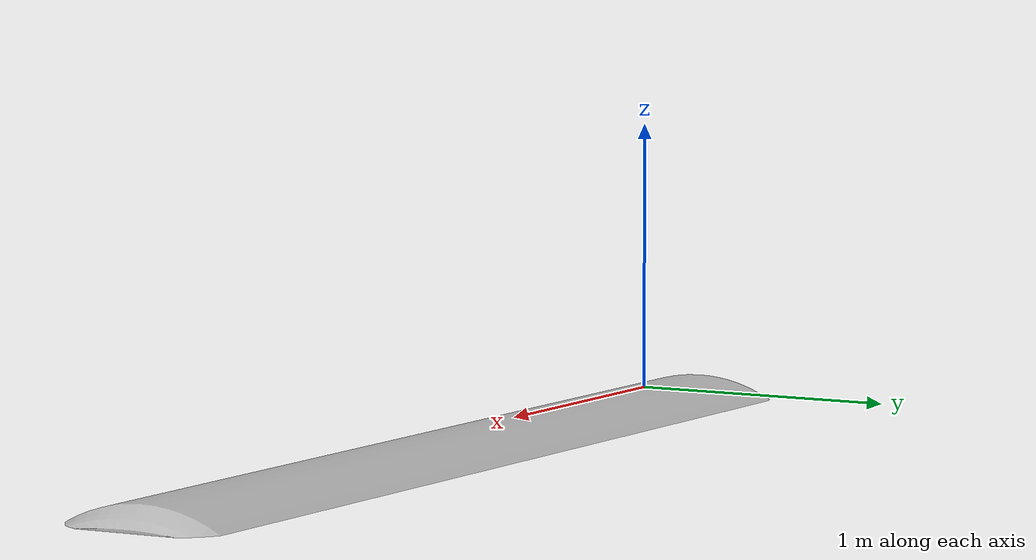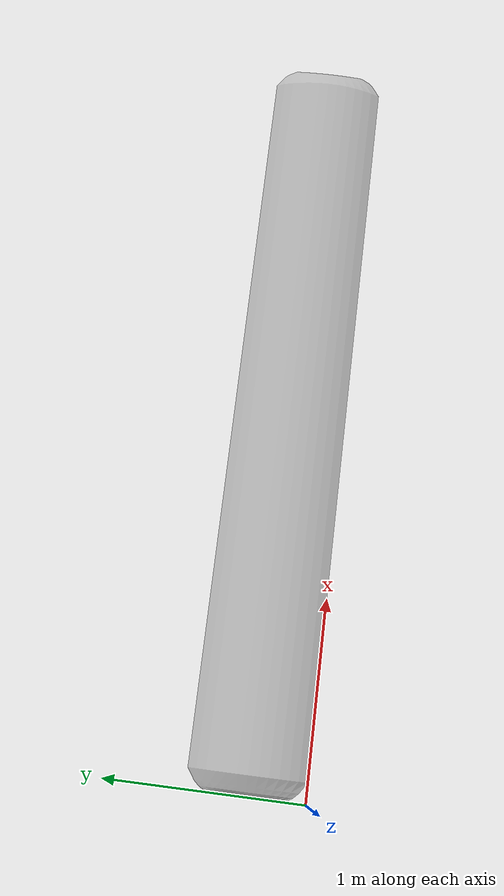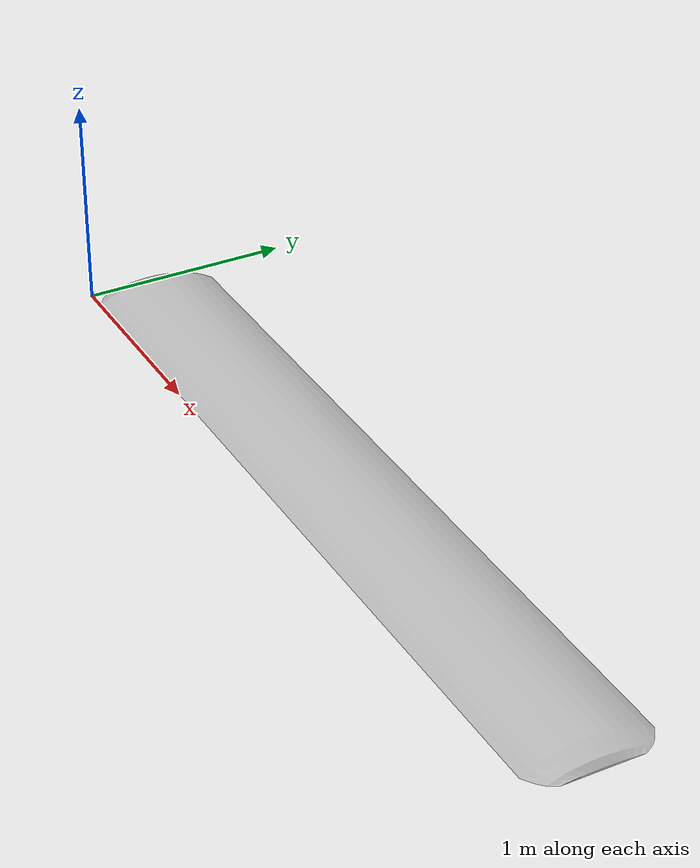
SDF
<?xml version="1.0" ?>
<sdf version="1.6">
  <model name="speed_bump_3">
    <static>true</static>
    <link name="link">
      <collision name="collision">
        <geometry>
          <mesh>
            <uri>model://speed_bump_3//bump_3.dae</uri>
          </mesh>
        </geometry>
        <surface>
          <friction>
            <ode>
              <mu>0.9</mu>
              <mu2>0.6</mu2>
            </ode>
          </friction>
        </surface>
      </collision>
      <visual name="visual">
        <geometry>
          <mesh>
            <uri>model://speed_bump_3//bump_3.dae</uri>
          </mesh>
        </geometry>
      </visual>
    </link>
  </model>
</sdf>
